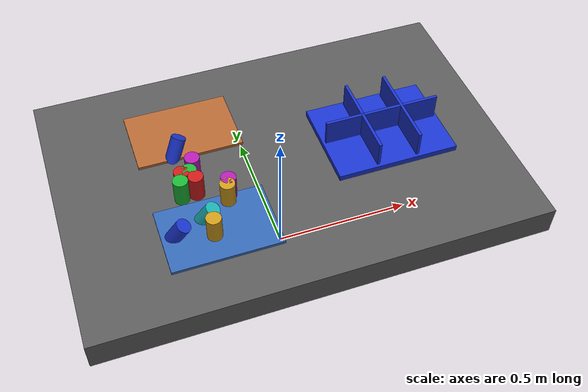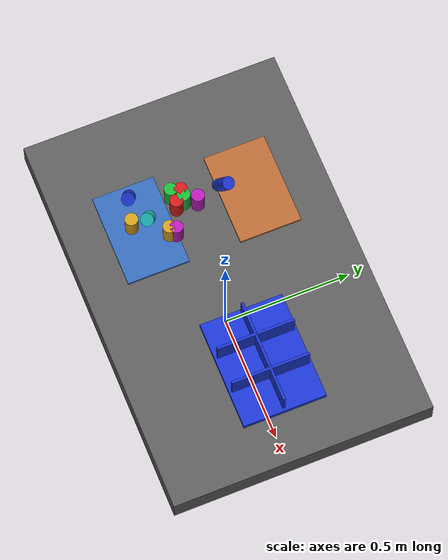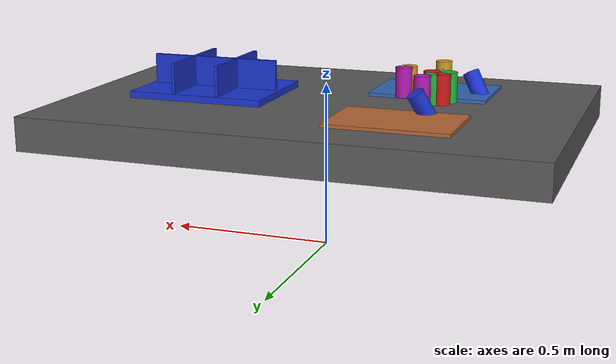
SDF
<?xml version="1.0" ?>
<sdf version="1.9">
  <!-- Standalone M1B scene.  The controller-backed Panda is spawned by the
       existing launch path; this file never alters the frozen M1A cube world. -->
  <world name="industrial_cylinder_v1">
    <physics name="bullet" type="bullet"><max_step_size>0.001</max_step_size><real_time_factor>1.0</real_time_factor></physics>
    <plugin name="gz::sim::systems::Physics" filename="gz-sim-physics-system"><engine><filename>gz-physics-bullet-featherstone-plugin</filename></engine></plugin>
    <plugin name="gz::sim::systems::UserCommands" filename="gz-sim-user-commands-system"/>
    <plugin name="gz::sim::systems::SceneBroadcaster" filename="gz-sim-scene-broadcaster-system"/>
    <plugin name="gz::sim::systems::Sensors" filename="gz-sim-sensors-system"><render_engine>ogre2</render_engine></plugin>
    <gravity>0 0 -9.81</gravity>
    <light type="directional" name="industrial_light"><pose>0 0 5 0 0 0</pose><direction>-0.3 0.2 -0.9</direction><diffuse>0.9 0.9 0.9 1</diffuse></light>
    <model name="industrial_work_table"><static>true</static><link name="link"><pose>0 0 0.4 0 0 0</pose><collision name="collision"><geometry><box><size>1.5 1.0 0.1</size></box></geometry></collision><visual name="visual"><geometry><box><size>1.5 1.0 0.1</size></box></geometry><material><diffuse>0.35 0.35 0.35 1</diffuse></material></visual></link></model>
    <model name="camera_fixture"><static>true</static><link name="camera_rgbd"><pose>-0.80 -0.80 1.40 0 0.77 0.93</pose><sensor name="front_rgbd" type="rgbd_camera"><always_on>1</always_on><update_rate>15</update_rate><topic>/xh/camera/rgbd</topic><camera><horizontal_fov>1.047</horizontal_fov><image><width>640</width><height>480</height><format>R8G8B8</format></image><clip><near>0.1</near><far>4.0</far></clip></camera></sensor></link></model>
    <model name="incoming_zone_a"><static>true</static><link name="link"><pose>-0.28 -0.22 0.455 0 0 0</pose><visual name="visual"><geometry><box><size>0.36 0.24 0.01</size></box></geometry><material><diffuse>0.2 0.4 0.7 1</diffuse></material></visual></link></model>
    <model name="incoming_zone_b"><static>true</static><link name="link"><pose>-0.28 0.22 0.455 0 0 0</pose><visual name="visual"><geometry><box><size>0.36 0.24 0.01</size></box></geometry><material><diffuse>0.7 0.4 0.2 1</diffuse></material></visual></link></model>
    <!-- M1B_RANDOM_PARTS_BEGIN -->
    <model name="cylinder_01"><pose>-0.3436 -0.0365 0.5000 0.0000 0.0000 -1.9516</pose><link name="link"><inertial><mass>0.06</mass></inertial><collision name="collision"><geometry><cylinder><radius>0.025</radius><length>0.09</length></cylinder></geometry></collision><visual name="visual"><geometry><cylinder><radius>0.025</radius><length>0.09</length></cylinder></geometry><material><diffuse>0.800 0.100 0.100 1</diffuse><specular>0.15 0.15 0.15 1</specular></material></visual></link></model>
    <model name="cylinder_02"><pose>-0.3558 -0.0711 0.5000 3.1416 0.0000 -0.8017</pose><link name="link"><inertial><mass>0.06</mass></inertial><collision name="collision"><geometry><cylinder><radius>0.025</radius><length>0.09</length></cylinder></geometry></collision><visual name="visual"><geometry><cylinder><radius>0.025</radius><length>0.09</length></cylinder></geometry><material><diffuse>0.100 0.700 0.200 1</diffuse><specular>0.15 0.15 0.15 1</specular></material></visual></link></model>
    <model name="cylinder_03"><pose>-0.3277 0.1246 0.4800 0.4500 -0.3000 2.7430</pose><link name="link"><inertial><mass>0.06</mass></inertial><collision name="collision"><geometry><cylinder><radius>0.025</radius><length>0.09</length></cylinder></geometry></collision><visual name="visual"><geometry><cylinder><radius>0.025</radius><length>0.09</length></cylinder></geometry><material><diffuse>0.100 0.200 0.800 1</diffuse><specular>0.15 0.15 0.15 1</specular></material></visual></link></model>
    <model name="cylinder_04"><pose>-0.2981 -0.2473 0.5000 0.0000 0.0000 -0.8342</pose><link name="link"><inertial><mass>0.06</mass></inertial><collision name="collision"><geometry><cylinder><radius>0.025</radius><length>0.09</length></cylinder></geometry></collision><visual name="visual"><geometry><cylinder><radius>0.025</radius><length>0.09</length></cylinder></geometry><material><diffuse>0.800 0.600 0.100 1</diffuse><specular>0.15 0.15 0.15 1</specular></material></visual></link></model>
    <model name="cylinder_05"><pose>-0.2960 0.0120 0.5000 3.1416 0.0000 2.5608</pose><link name="link"><inertial><mass>0.06</mass></inertial><collision name="collision"><geometry><cylinder><radius>0.025</radius><length>0.09</length></cylinder></geometry></collision><visual name="visual"><geometry><cylinder><radius>0.025</radius><length>0.09</length></cylinder></geometry><material><diffuse>0.700 0.100 0.700 1</diffuse><specular>0.15 0.15 0.15 1</specular></material></visual></link></model>
    <model name="cylinder_06"><pose>-0.3047 -0.1799 0.4800 0.4500 -0.3000 1.5554</pose><link name="link"><inertial><mass>0.06</mass></inertial><collision name="collision"><geometry><cylinder><radius>0.025</radius><length>0.09</length></cylinder></geometry></collision><visual name="visual"><geometry><cylinder><radius>0.025</radius><length>0.09</length></cylinder></geometry><material><diffuse>0.100 0.700 0.700 1</diffuse><specular>0.15 0.15 0.15 1</specular></material></visual></link></model>
    <model name="cylinder_07"><pose>-0.3056 -0.0685 0.5000 0.0000 0.0000 2.7843</pose><link name="link"><inertial><mass>0.06</mass></inertial><collision name="collision"><geometry><cylinder><radius>0.025</radius><length>0.09</length></cylinder></geometry></collision><visual name="visual"><geometry><cylinder><radius>0.025</radius><length>0.09</length></cylinder></geometry><material><diffuse>0.800 0.100 0.100 1</diffuse><specular>0.15 0.15 0.15 1</specular></material></visual></link></model>
    <model name="cylinder_08"><pose>-0.3185 -0.0348 0.5000 3.1416 0.0000 -0.3750</pose><link name="link"><inertial><mass>0.06</mass></inertial><collision name="collision"><geometry><cylinder><radius>0.025</radius><length>0.09</length></cylinder></geometry></collision><visual name="visual"><geometry><cylinder><radius>0.025</radius><length>0.09</length></cylinder></geometry><material><diffuse>0.100 0.700 0.200 1</diffuse><specular>0.15 0.15 0.15 1</specular></material></visual></link></model>
    <model name="cylinder_09"><pose>-0.4079 -0.2169 0.4800 0.4500 -0.3000 1.6956</pose><link name="link"><inertial><mass>0.06</mass></inertial><collision name="collision"><geometry><cylinder><radius>0.025</radius><length>0.09</length></cylinder></geometry></collision><visual name="visual"><geometry><cylinder><radius>0.025</radius><length>0.09</length></cylinder></geometry><material><diffuse>0.100 0.200 0.800 1</diffuse><specular>0.15 0.15 0.15 1</specular></material></visual></link></model>
    <model name="cylinder_10"><pose>-0.2198 -0.1296 0.5000 0.0000 0.0000 -2.4675</pose><link name="link"><inertial><mass>0.06</mass></inertial><collision name="collision"><geometry><cylinder><radius>0.025</radius><length>0.09</length></cylinder></geometry></collision><visual name="visual"><geometry><cylinder><radius>0.025</radius><length>0.09</length></cylinder></geometry><material><diffuse>0.800 0.600 0.100 1</diffuse><specular>0.15 0.15 0.15 1</specular></material></visual></link></model>
    <model name="cylinder_11"><pose>-0.2097 -0.1063 0.5000 3.1416 0.0000 1.5766</pose><link name="link"><inertial><mass>0.06</mass></inertial><collision name="collision"><geometry><cylinder><radius>0.025</radius><length>0.09</length></cylinder></geometry></collision><visual name="visual"><geometry><cylinder><radius>0.025</radius><length>0.09</length></cylinder></geometry><material><diffuse>0.700 0.100 0.700 1</diffuse><specular>0.15 0.15 0.15 1</specular></material></visual></link></model>
    <!-- M1B_RANDOM_PARTS_END -->
    <model name="blue_partition_bin"><static>true</static><pose>0.36 0 0.45 0 0 0</pose><link name="link"><collision name="floor"><pose>0 0 0.01 0 0 0</pose><geometry><box><size>0.42 0.32 0.02</size></box></geometry></collision><visual name="floor_visual"><pose>0 0 0.01 0 0 0</pose><geometry><box><size>0.42 0.32 0.02</size></box></geometry><material><diffuse>0.1 0.2 0.8 1</diffuse></material></visual><visual name="row_divider"><pose>0 0 0.06 0 0 0</pose><geometry><box><size>0.40 0.01 0.10</size></box></geometry><material><diffuse>0.1 0.2 0.8 1</diffuse></material></visual><visual name="col_divider_a"><pose>-0.07 0 0.06 0 0 0</pose><geometry><box><size>0.01 0.30 0.10</size></box></geometry><material><diffuse>0.1 0.2 0.8 1</diffuse></material></visual><visual name="col_divider_b"><pose>0.07 0 0.06 0 0 0</pose><geometry><box><size>0.01 0.30 0.10</size></box></geometry><material><diffuse>0.1 0.2 0.8 1</diffuse></material></visual></link></model>
    <!-- Reserved only: second table, bin transport corridor, stackable-bin
         collision volume, and second arm mounting namespace. -->
  </world>
</sdf>
